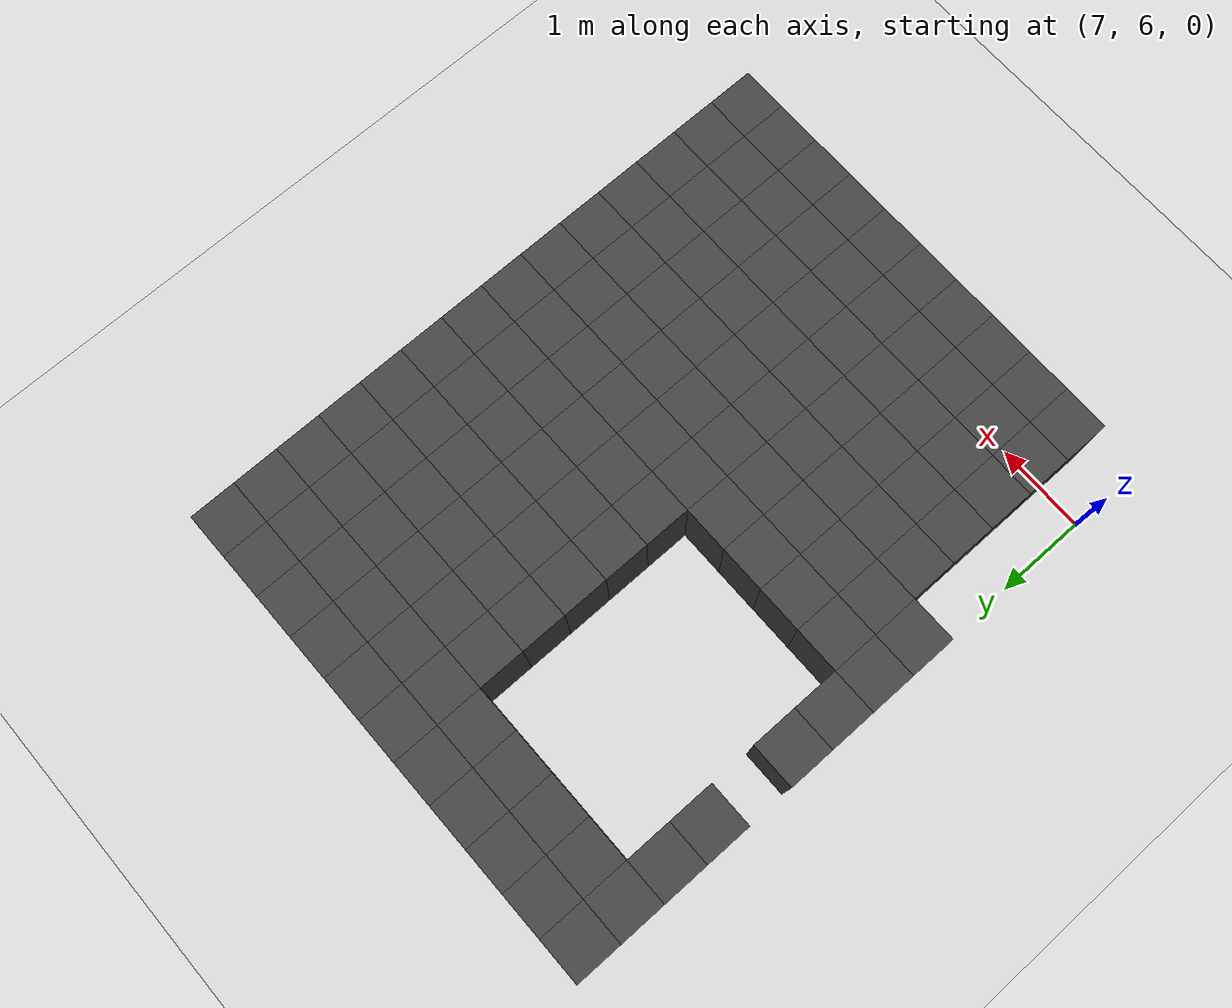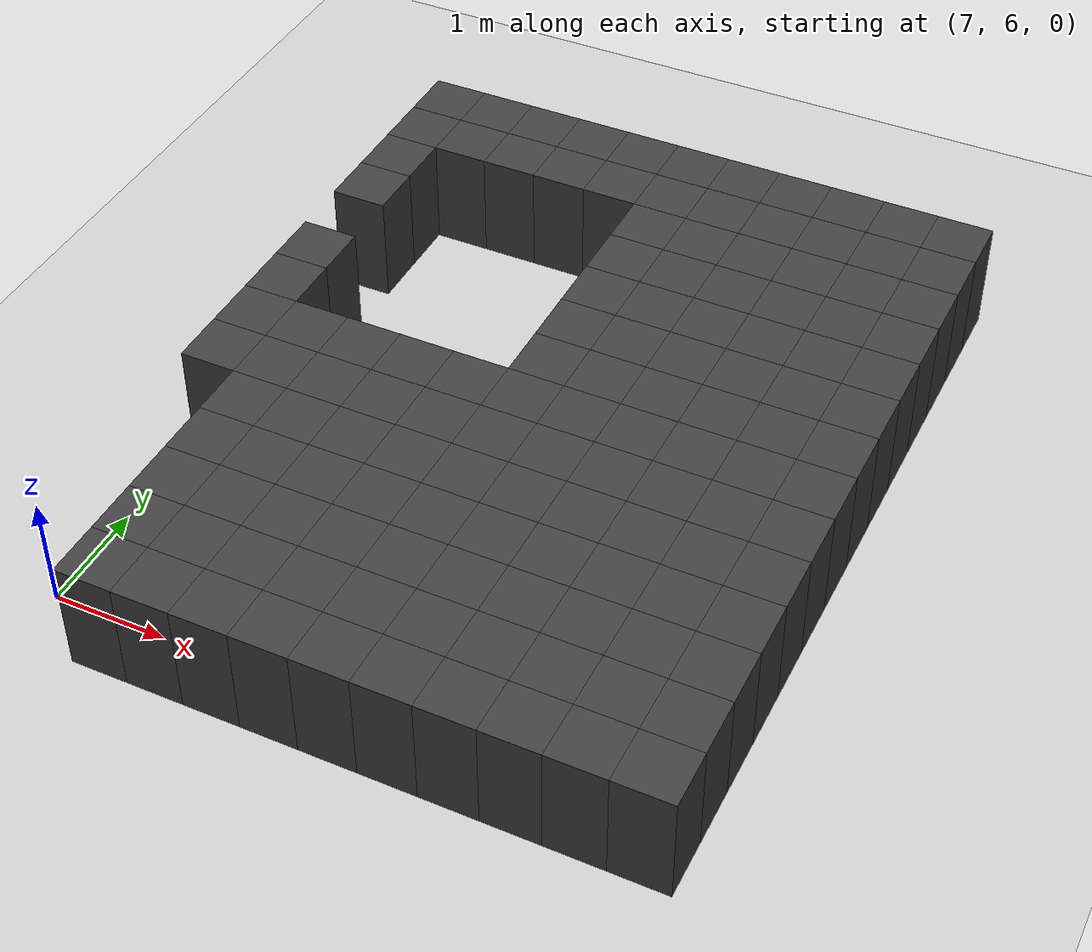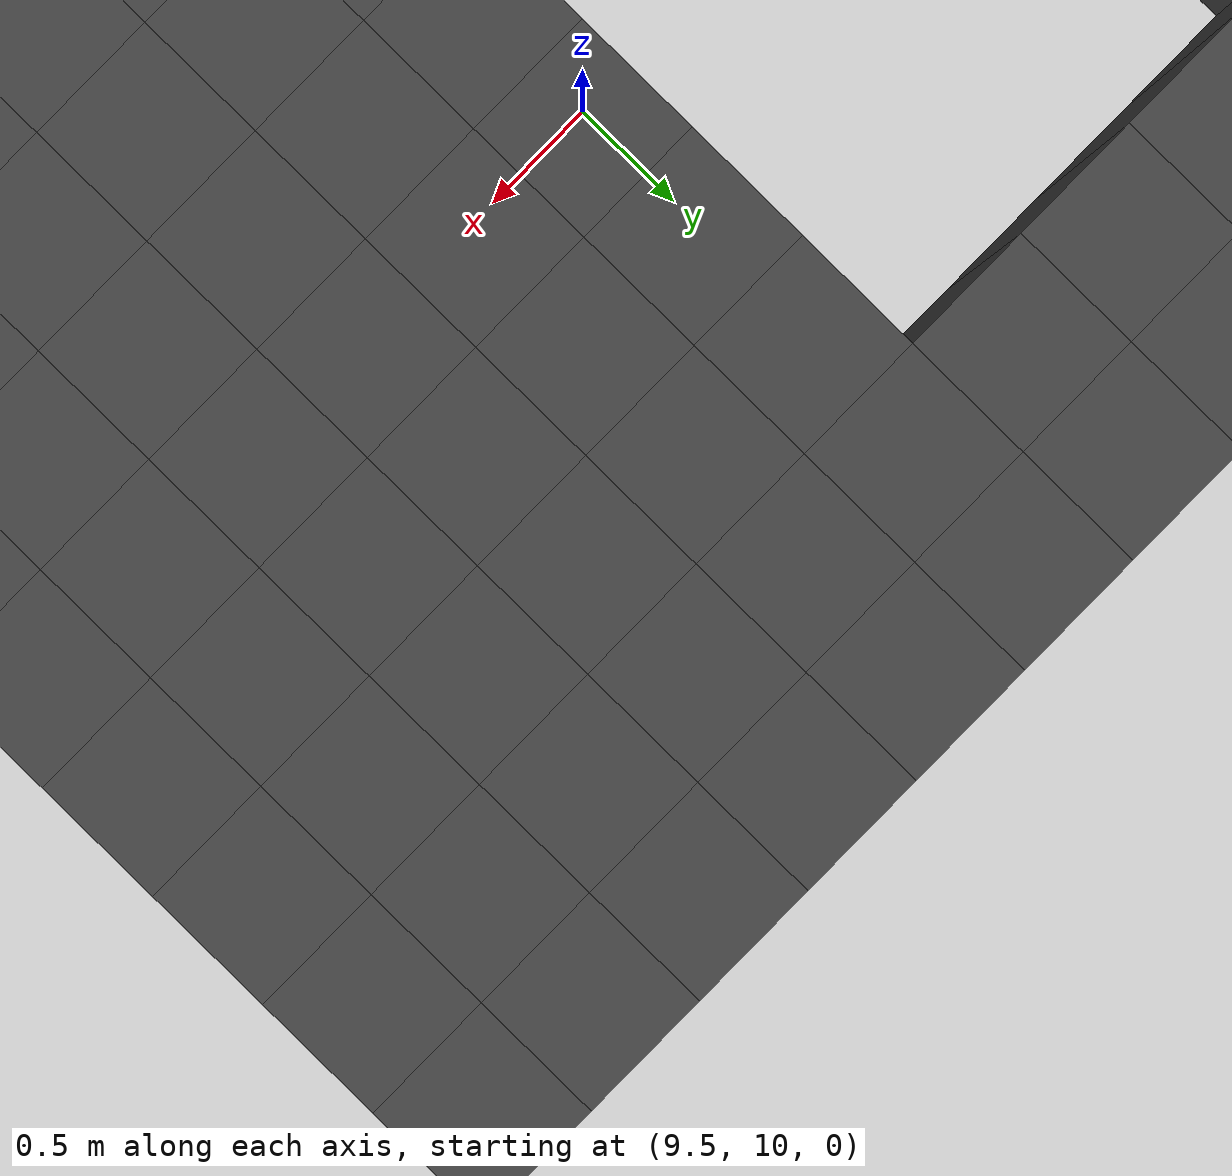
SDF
<sdf version="1.7">
 <world name="map_14494">
  <model name="ground_plane">
   <static>true</static>
   <link name="link">
    <collision name="collision">
     <geometry><plane><normal>0 0 1</normal><size>200 200</size></plane></geometry>
    </collision>
    <visual name="visual">
     <geometry><plane><normal>0 0 1</normal><size>200 200</size></plane></geometry>
     <material><ambient>0.8 0.8 0.8 1</ambient><diffuse>0.8 0.8 0.8 1</diffuse></material>
    </visual>
   </link>
  </model>
  <model name="maze_environment">
   <static>true</static>
   <link name="wall_39">
    <pose>7.250 12.250 0.500 0 0 0</pose>
    <collision name="col"><geometry><box><size>0.5 0.5 1.0</size></box></geometry></collision>
    <visual name="vis">
     <geometry><box><size>0.5 0.5 1.0</size></box></geometry>
     <material><ambient>0.15 0.15 0.15 1</ambient><diffuse>0.25 0.25 0.25 1</diffuse></material>
    </visual>
   </link>
   <link name="wall_40">
    <pose>7.750 12.250 0.500 0 0 0</pose>
    <collision name="col"><geometry><box><size>0.5 0.5 1.0</size></box></geometry></collision>
    <visual name="vis">
     <geometry><box><size>0.5 0.5 1.0</size></box></geometry>
     <material><ambient>0.15 0.15 0.15 1</ambient><diffuse>0.25 0.25 0.25 1</diffuse></material>
    </visual>
   </link>
   <link name="wall_41">
    <pose>8.250 12.250 0.500 0 0 0</pose>
    <collision name="col"><geometry><box><size>0.5 0.5 1.0</size></box></geometry></collision>
    <visual name="vis">
     <geometry><box><size>0.5 0.5 1.0</size></box></geometry>
     <material><ambient>0.15 0.15 0.15 1</ambient><diffuse>0.25 0.25 0.25 1</diffuse></material>
    </visual>
   </link>
   <link name="wall_42">
    <pose>8.750 12.250 0.500 0 0 0</pose>
    <collision name="col"><geometry><box><size>0.5 0.5 1.0</size></box></geometry></collision>
    <visual name="vis">
     <geometry><box><size>0.5 0.5 1.0</size></box></geometry>
     <material><ambient>0.15 0.15 0.15 1</ambient><diffuse>0.25 0.25 0.25 1</diffuse></material>
    </visual>
   </link>
   <link name="wall_43">
    <pose>9.250 12.250 0.500 0 0 0</pose>
    <collision name="col"><geometry><box><size>0.5 0.5 1.0</size></box></geometry></collision>
    <visual name="vis">
     <geometry><box><size>0.5 0.5 1.0</size></box></geometry>
     <material><ambient>0.15 0.15 0.15 1</ambient><diffuse>0.25 0.25 0.25 1</diffuse></material>
    </visual>
   </link>
   <link name="wall_44">
    <pose>9.750 12.250 0.500 0 0 0</pose>
    <collision name="col"><geometry><box><size>0.5 0.5 1.0</size></box></geometry></collision>
    <visual name="vis">
     <geometry><box><size>0.5 0.5 1.0</size></box></geometry>
     <material><ambient>0.15 0.15 0.15 1</ambient><diffuse>0.25 0.25 0.25 1</diffuse></material>
    </visual>
   </link>
   <link name="wall_45">
    <pose>10.250 12.250 0.500 0 0 0</pose>
    <collision name="col"><geometry><box><size>0.5 0.5 1.0</size></box></geometry></collision>
    <visual name="vis">
     <geometry><box><size>0.5 0.5 1.0</size></box></geometry>
     <material><ambient>0.15 0.15 0.15 1</ambient><diffuse>0.25 0.25 0.25 1</diffuse></material>
    </visual>
   </link>
   <link name="wall_46">
    <pose>10.750 12.250 0.500 0 0 0</pose>
    <collision name="col"><geometry><box><size>0.5 0.5 1.0</size></box></geometry></collision>
    <visual name="vis">
     <geometry><box><size>0.5 0.5 1.0</size></box></geometry>
     <material><ambient>0.15 0.15 0.15 1</ambient><diffuse>0.25 0.25 0.25 1</diffuse></material>
    </visual>
   </link>
   <link name="wall_47">
    <pose>11.250 12.250 0.500 0 0 0</pose>
    <collision name="col"><geometry><box><size>0.5 0.5 1.0</size></box></geometry></collision>
    <visual name="vis">
     <geometry><box><size>0.5 0.5 1.0</size></box></geometry>
     <material><ambient>0.15 0.15 0.15 1</ambient><diffuse>0.25 0.25 0.25 1</diffuse></material>
    </visual>
   </link>
   <link name="wall_48">
    <pose>11.750 12.250 0.500 0 0 0</pose>
    <collision name="col"><geometry><box><size>0.5 0.5 1.0</size></box></geometry></collision>
    <visual name="vis">
     <geometry><box><size>0.5 0.5 1.0</size></box></geometry>
     <material><ambient>0.15 0.15 0.15 1</ambient><diffuse>0.25 0.25 0.25 1</diffuse></material>
    </visual>
   </link>
   <link name="wall_49">
    <pose>12.250 12.250 0.500 0 0 0</pose>
    <collision name="col"><geometry><box><size>0.5 0.5 1.0</size></box></geometry></collision>
    <visual name="vis">
     <geometry><box><size>0.5 0.5 1.0</size></box></geometry>
     <material><ambient>0.15 0.15 0.15 1</ambient><diffuse>0.25 0.25 0.25 1</diffuse></material>
    </visual>
   </link>
   <link name="wall_86">
    <pose>7.250 11.750 0.500 0 0 0</pose>
    <collision name="col"><geometry><box><size>0.5 0.5 1.0</size></box></geometry></collision>
    <visual name="vis">
     <geometry><box><size>0.5 0.5 1.0</size></box></geometry>
     <material><ambient>0.15 0.15 0.15 1</ambient><diffuse>0.25 0.25 0.25 1</diffuse></material>
    </visual>
   </link>
   <link name="wall_87">
    <pose>7.750 11.750 0.500 0 0 0</pose>
    <collision name="col"><geometry><box><size>0.5 0.5 1.0</size></box></geometry></collision>
    <visual name="vis">
     <geometry><box><size>0.5 0.5 1.0</size></box></geometry>
     <material><ambient>0.15 0.15 0.15 1</ambient><diffuse>0.25 0.25 0.25 1</diffuse></material>
    </visual>
   </link>
   <link name="wall_88">
    <pose>8.250 11.750 0.500 0 0 0</pose>
    <collision name="col"><geometry><box><size>0.5 0.5 1.0</size></box></geometry></collision>
    <visual name="vis">
     <geometry><box><size>0.5 0.5 1.0</size></box></geometry>
     <material><ambient>0.15 0.15 0.15 1</ambient><diffuse>0.25 0.25 0.25 1</diffuse></material>
    </visual>
   </link>
   <link name="wall_89">
    <pose>8.750 11.750 0.500 0 0 0</pose>
    <collision name="col"><geometry><box><size>0.5 0.5 1.0</size></box></geometry></collision>
    <visual name="vis">
     <geometry><box><size>0.5 0.5 1.0</size></box></geometry>
     <material><ambient>0.15 0.15 0.15 1</ambient><diffuse>0.25 0.25 0.25 1</diffuse></material>
    </visual>
   </link>
   <link name="wall_90">
    <pose>9.250 11.750 0.500 0 0 0</pose>
    <collision name="col"><geometry><box><size>0.5 0.5 1.0</size></box></geometry></collision>
    <visual name="vis">
     <geometry><box><size>0.5 0.5 1.0</size></box></geometry>
     <material><ambient>0.15 0.15 0.15 1</ambient><diffuse>0.25 0.25 0.25 1</diffuse></material>
    </visual>
   </link>
   <link name="wall_91">
    <pose>9.750 11.750 0.500 0 0 0</pose>
    <collision name="col"><geometry><box><size>0.5 0.5 1.0</size></box></geometry></collision>
    <visual name="vis">
     <geometry><box><size>0.5 0.5 1.0</size></box></geometry>
     <material><ambient>0.15 0.15 0.15 1</ambient><diffuse>0.25 0.25 0.25 1</diffuse></material>
    </visual>
   </link>
   <link name="wall_92">
    <pose>10.250 11.750 0.500 0 0 0</pose>
    <collision name="col"><geometry><box><size>0.5 0.5 1.0</size></box></geometry></collision>
    <visual name="vis">
     <geometry><box><size>0.5 0.5 1.0</size></box></geometry>
     <material><ambient>0.15 0.15 0.15 1</ambient><diffuse>0.25 0.25 0.25 1</diffuse></material>
    </visual>
   </link>
   <link name="wall_93">
    <pose>10.750 11.750 0.500 0 0 0</pose>
    <collision name="col"><geometry><box><size>0.5 0.5 1.0</size></box></geometry></collision>
    <visual name="vis">
     <geometry><box><size>0.5 0.5 1.0</size></box></geometry>
     <material><ambient>0.15 0.15 0.15 1</ambient><diffuse>0.25 0.25 0.25 1</diffuse></material>
    </visual>
   </link>
   <link name="wall_94">
    <pose>11.250 11.750 0.500 0 0 0</pose>
    <collision name="col"><geometry><box><size>0.5 0.5 1.0</size></box></geometry></collision>
    <visual name="vis">
     <geometry><box><size>0.5 0.5 1.0</size></box></geometry>
     <material><ambient>0.15 0.15 0.15 1</ambient><diffuse>0.25 0.25 0.25 1</diffuse></material>
    </visual>
   </link>
   <link name="wall_95">
    <pose>11.750 11.750 0.500 0 0 0</pose>
    <collision name="col"><geometry><box><size>0.5 0.5 1.0</size></box></geometry></collision>
    <visual name="vis">
     <geometry><box><size>0.5 0.5 1.0</size></box></geometry>
     <material><ambient>0.15 0.15 0.15 1</ambient><diffuse>0.25 0.25 0.25 1</diffuse></material>
    </visual>
   </link>
   <link name="wall_96">
    <pose>12.250 11.750 0.500 0 0 0</pose>
    <collision name="col"><geometry><box><size>0.5 0.5 1.0</size></box></geometry></collision>
    <visual name="vis">
     <geometry><box><size>0.5 0.5 1.0</size></box></geometry>
     <material><ambient>0.15 0.15 0.15 1</ambient><diffuse>0.25 0.25 0.25 1</diffuse></material>
    </visual>
   </link>
   <link name="wall_125">
    <pose>7.250 11.250 0.500 0 0 0</pose>
    <collision name="col"><geometry><box><size>0.5 0.5 1.0</size></box></geometry></collision>
    <visual name="vis">
     <geometry><box><size>0.5 0.5 1.0</size></box></geometry>
     <material><ambient>0.15 0.15 0.15 1</ambient><diffuse>0.25 0.25 0.25 1</diffuse></material>
    </visual>
   </link>
   <link name="wall_126">
    <pose>9.750 11.250 0.500 0 0 0</pose>
    <collision name="col"><geometry><box><size>0.5 0.5 1.0</size></box></geometry></collision>
    <visual name="vis">
     <geometry><box><size>0.5 0.5 1.0</size></box></geometry>
     <material><ambient>0.15 0.15 0.15 1</ambient><diffuse>0.25 0.25 0.25 1</diffuse></material>
    </visual>
   </link>
   <link name="wall_127">
    <pose>10.250 11.250 0.500 0 0 0</pose>
    <collision name="col"><geometry><box><size>0.5 0.5 1.0</size></box></geometry></collision>
    <visual name="vis">
     <geometry><box><size>0.5 0.5 1.0</size></box></geometry>
     <material><ambient>0.15 0.15 0.15 1</ambient><diffuse>0.25 0.25 0.25 1</diffuse></material>
    </visual>
   </link>
   <link name="wall_128">
    <pose>10.750 11.250 0.500 0 0 0</pose>
    <collision name="col"><geometry><box><size>0.5 0.5 1.0</size></box></geometry></collision>
    <visual name="vis">
     <geometry><box><size>0.5 0.5 1.0</size></box></geometry>
     <material><ambient>0.15 0.15 0.15 1</ambient><diffuse>0.25 0.25 0.25 1</diffuse></material>
    </visual>
   </link>
   <link name="wall_129">
    <pose>11.250 11.250 0.500 0 0 0</pose>
    <collision name="col"><geometry><box><size>0.5 0.5 1.0</size></box></geometry></collision>
    <visual name="vis">
     <geometry><box><size>0.5 0.5 1.0</size></box></geometry>
     <material><ambient>0.15 0.15 0.15 1</ambient><diffuse>0.25 0.25 0.25 1</diffuse></material>
    </visual>
   </link>
   <link name="wall_130">
    <pose>11.750 11.250 0.500 0 0 0</pose>
    <collision name="col"><geometry><box><size>0.5 0.5 1.0</size></box></geometry></collision>
    <visual name="vis">
     <geometry><box><size>0.5 0.5 1.0</size></box></geometry>
     <material><ambient>0.15 0.15 0.15 1</ambient><diffuse>0.25 0.25 0.25 1</diffuse></material>
    </visual>
   </link>
   <link name="wall_131">
    <pose>12.250 11.250 0.500 0 0 0</pose>
    <collision name="col"><geometry><box><size>0.5 0.5 1.0</size></box></geometry></collision>
    <visual name="vis">
     <geometry><box><size>0.5 0.5 1.0</size></box></geometry>
     <material><ambient>0.15 0.15 0.15 1</ambient><diffuse>0.25 0.25 0.25 1</diffuse></material>
    </visual>
   </link>
   <link name="wall_153">
    <pose>7.250 10.750 0.500 0 0 0</pose>
    <collision name="col"><geometry><box><size>0.5 0.5 1.0</size></box></geometry></collision>
    <visual name="vis">
     <geometry><box><size>0.5 0.5 1.0</size></box></geometry>
     <material><ambient>0.15 0.15 0.15 1</ambient><diffuse>0.25 0.25 0.25 1</diffuse></material>
    </visual>
   </link>
   <link name="wall_154">
    <pose>9.750 10.750 0.500 0 0 0</pose>
    <collision name="col"><geometry><box><size>0.5 0.5 1.0</size></box></geometry></collision>
    <visual name="vis">
     <geometry><box><size>0.5 0.5 1.0</size></box></geometry>
     <material><ambient>0.15 0.15 0.15 1</ambient><diffuse>0.25 0.25 0.25 1</diffuse></material>
    </visual>
   </link>
   <link name="wall_155">
    <pose>10.250 10.750 0.500 0 0 0</pose>
    <collision name="col"><geometry><box><size>0.5 0.5 1.0</size></box></geometry></collision>
    <visual name="vis">
     <geometry><box><size>0.5 0.5 1.0</size></box></geometry>
     <material><ambient>0.15 0.15 0.15 1</ambient><diffuse>0.25 0.25 0.25 1</diffuse></material>
    </visual>
   </link>
   <link name="wall_156">
    <pose>10.750 10.750 0.500 0 0 0</pose>
    <collision name="col"><geometry><box><size>0.5 0.5 1.0</size></box></geometry></collision>
    <visual name="vis">
     <geometry><box><size>0.5 0.5 1.0</size></box></geometry>
     <material><ambient>0.15 0.15 0.15 1</ambient><diffuse>0.25 0.25 0.25 1</diffuse></material>
    </visual>
   </link>
   <link name="wall_157">
    <pose>11.250 10.750 0.500 0 0 0</pose>
    <collision name="col"><geometry><box><size>0.5 0.5 1.0</size></box></geometry></collision>
    <visual name="vis">
     <geometry><box><size>0.5 0.5 1.0</size></box></geometry>
     <material><ambient>0.15 0.15 0.15 1</ambient><diffuse>0.25 0.25 0.25 1</diffuse></material>
    </visual>
   </link>
   <link name="wall_158">
    <pose>11.750 10.750 0.500 0 0 0</pose>
    <collision name="col"><geometry><box><size>0.5 0.5 1.0</size></box></geometry></collision>
    <visual name="vis">
     <geometry><box><size>0.5 0.5 1.0</size></box></geometry>
     <material><ambient>0.15 0.15 0.15 1</ambient><diffuse>0.25 0.25 0.25 1</diffuse></material>
    </visual>
   </link>
   <link name="wall_159">
    <pose>12.250 10.750 0.500 0 0 0</pose>
    <collision name="col"><geometry><box><size>0.5 0.5 1.0</size></box></geometry></collision>
    <visual name="vis">
     <geometry><box><size>0.5 0.5 1.0</size></box></geometry>
     <material><ambient>0.15 0.15 0.15 1</ambient><diffuse>0.25 0.25 0.25 1</diffuse></material>
    </visual>
   </link>
   <link name="wall_172">
    <pose>9.750 10.250 0.500 0 0 0</pose>
    <collision name="col"><geometry><box><size>0.5 0.5 1.0</size></box></geometry></collision>
    <visual name="vis">
     <geometry><box><size>0.5 0.5 1.0</size></box></geometry>
     <material><ambient>0.15 0.15 0.15 1</ambient><diffuse>0.25 0.25 0.25 1</diffuse></material>
    </visual>
   </link>
   <link name="wall_173">
    <pose>10.250 10.250 0.500 0 0 0</pose>
    <collision name="col"><geometry><box><size>0.5 0.5 1.0</size></box></geometry></collision>
    <visual name="vis">
     <geometry><box><size>0.5 0.5 1.0</size></box></geometry>
     <material><ambient>0.15 0.15 0.15 1</ambient><diffuse>0.25 0.25 0.25 1</diffuse></material>
    </visual>
   </link>
   <link name="wall_174">
    <pose>10.750 10.250 0.500 0 0 0</pose>
    <collision name="col"><geometry><box><size>0.5 0.5 1.0</size></box></geometry></collision>
    <visual name="vis">
     <geometry><box><size>0.5 0.5 1.0</size></box></geometry>
     <material><ambient>0.15 0.15 0.15 1</ambient><diffuse>0.25 0.25 0.25 1</diffuse></material>
    </visual>
   </link>
   <link name="wall_175">
    <pose>11.250 10.250 0.500 0 0 0</pose>
    <collision name="col"><geometry><box><size>0.5 0.5 1.0</size></box></geometry></collision>
    <visual name="vis">
     <geometry><box><size>0.5 0.5 1.0</size></box></geometry>
     <material><ambient>0.15 0.15 0.15 1</ambient><diffuse>0.25 0.25 0.25 1</diffuse></material>
    </visual>
   </link>
   <link name="wall_176">
    <pose>11.750 10.250 0.500 0 0 0</pose>
    <collision name="col"><geometry><box><size>0.5 0.5 1.0</size></box></geometry></collision>
    <visual name="vis">
     <geometry><box><size>0.5 0.5 1.0</size></box></geometry>
     <material><ambient>0.15 0.15 0.15 1</ambient><diffuse>0.25 0.25 0.25 1</diffuse></material>
    </visual>
   </link>
   <link name="wall_177">
    <pose>12.250 10.250 0.500 0 0 0</pose>
    <collision name="col"><geometry><box><size>0.5 0.5 1.0</size></box></geometry></collision>
    <visual name="vis">
     <geometry><box><size>0.5 0.5 1.0</size></box></geometry>
     <material><ambient>0.15 0.15 0.15 1</ambient><diffuse>0.25 0.25 0.25 1</diffuse></material>
    </visual>
   </link>
   <link name="wall_201">
    <pose>7.250 9.750 0.500 0 0 0</pose>
    <collision name="col"><geometry><box><size>0.5 0.5 1.0</size></box></geometry></collision>
    <visual name="vis">
     <geometry><box><size>0.5 0.5 1.0</size></box></geometry>
     <material><ambient>0.15 0.15 0.15 1</ambient><diffuse>0.25 0.25 0.25 1</diffuse></material>
    </visual>
   </link>
   <link name="wall_202">
    <pose>9.750 9.750 0.500 0 0 0</pose>
    <collision name="col"><geometry><box><size>0.5 0.5 1.0</size></box></geometry></collision>
    <visual name="vis">
     <geometry><box><size>0.5 0.5 1.0</size></box></geometry>
     <material><ambient>0.15 0.15 0.15 1</ambient><diffuse>0.25 0.25 0.25 1</diffuse></material>
    </visual>
   </link>
   <link name="wall_203">
    <pose>10.250 9.750 0.500 0 0 0</pose>
    <collision name="col"><geometry><box><size>0.5 0.5 1.0</size></box></geometry></collision>
    <visual name="vis">
     <geometry><box><size>0.5 0.5 1.0</size></box></geometry>
     <material><ambient>0.15 0.15 0.15 1</ambient><diffuse>0.25 0.25 0.25 1</diffuse></material>
    </visual>
   </link>
   <link name="wall_204">
    <pose>10.750 9.750 0.500 0 0 0</pose>
    <collision name="col"><geometry><box><size>0.5 0.5 1.0</size></box></geometry></collision>
    <visual name="vis">
     <geometry><box><size>0.5 0.5 1.0</size></box></geometry>
     <material><ambient>0.15 0.15 0.15 1</ambient><diffuse>0.25 0.25 0.25 1</diffuse></material>
    </visual>
   </link>
   <link name="wall_205">
    <pose>11.250 9.750 0.500 0 0 0</pose>
    <collision name="col"><geometry><box><size>0.5 0.5 1.0</size></box></geometry></collision>
    <visual name="vis">
     <geometry><box><size>0.5 0.5 1.0</size></box></geometry>
     <material><ambient>0.15 0.15 0.15 1</ambient><diffuse>0.25 0.25 0.25 1</diffuse></material>
    </visual>
   </link>
   <link name="wall_206">
    <pose>11.750 9.750 0.500 0 0 0</pose>
    <collision name="col"><geometry><box><size>0.5 0.5 1.0</size></box></geometry></collision>
    <visual name="vis">
     <geometry><box><size>0.5 0.5 1.0</size></box></geometry>
     <material><ambient>0.15 0.15 0.15 1</ambient><diffuse>0.25 0.25 0.25 1</diffuse></material>
    </visual>
   </link>
   <link name="wall_207">
    <pose>12.250 9.750 0.500 0 0 0</pose>
    <collision name="col"><geometry><box><size>0.5 0.5 1.0</size></box></geometry></collision>
    <visual name="vis">
     <geometry><box><size>0.5 0.5 1.0</size></box></geometry>
     <material><ambient>0.15 0.15 0.15 1</ambient><diffuse>0.25 0.25 0.25 1</diffuse></material>
    </visual>
   </link>
   <link name="wall_226">
    <pose>7.250 9.250 0.500 0 0 0</pose>
    <collision name="col"><geometry><box><size>0.5 0.5 1.0</size></box></geometry></collision>
    <visual name="vis">
     <geometry><box><size>0.5 0.5 1.0</size></box></geometry>
     <material><ambient>0.15 0.15 0.15 1</ambient><diffuse>0.25 0.25 0.25 1</diffuse></material>
    </visual>
   </link>
   <link name="wall_227">
    <pose>9.750 9.250 0.500 0 0 0</pose>
    <collision name="col"><geometry><box><size>0.5 0.5 1.0</size></box></geometry></collision>
    <visual name="vis">
     <geometry><box><size>0.5 0.5 1.0</size></box></geometry>
     <material><ambient>0.15 0.15 0.15 1</ambient><diffuse>0.25 0.25 0.25 1</diffuse></material>
    </visual>
   </link>
   <link name="wall_228">
    <pose>10.250 9.250 0.500 0 0 0</pose>
    <collision name="col"><geometry><box><size>0.5 0.5 1.0</size></box></geometry></collision>
    <visual name="vis">
     <geometry><box><size>0.5 0.5 1.0</size></box></geometry>
     <material><ambient>0.15 0.15 0.15 1</ambient><diffuse>0.25 0.25 0.25 1</diffuse></material>
    </visual>
   </link>
   <link name="wall_229">
    <pose>10.750 9.250 0.500 0 0 0</pose>
    <collision name="col"><geometry><box><size>0.5 0.5 1.0</size></box></geometry></collision>
    <visual name="vis">
     <geometry><box><size>0.5 0.5 1.0</size></box></geometry>
     <material><ambient>0.15 0.15 0.15 1</ambient><diffuse>0.25 0.25 0.25 1</diffuse></material>
    </visual>
   </link>
   <link name="wall_230">
    <pose>11.250 9.250 0.500 0 0 0</pose>
    <collision name="col"><geometry><box><size>0.5 0.5 1.0</size></box></geometry></collision>
    <visual name="vis">
     <geometry><box><size>0.5 0.5 1.0</size></box></geometry>
     <material><ambient>0.15 0.15 0.15 1</ambient><diffuse>0.25 0.25 0.25 1</diffuse></material>
    </visual>
   </link>
   <link name="wall_231">
    <pose>11.750 9.250 0.500 0 0 0</pose>
    <collision name="col"><geometry><box><size>0.5 0.5 1.0</size></box></geometry></collision>
    <visual name="vis">
     <geometry><box><size>0.5 0.5 1.0</size></box></geometry>
     <material><ambient>0.15 0.15 0.15 1</ambient><diffuse>0.25 0.25 0.25 1</diffuse></material>
    </visual>
   </link>
   <link name="wall_232">
    <pose>12.250 9.250 0.500 0 0 0</pose>
    <collision name="col"><geometry><box><size>0.5 0.5 1.0</size></box></geometry></collision>
    <visual name="vis">
     <geometry><box><size>0.5 0.5 1.0</size></box></geometry>
     <material><ambient>0.15 0.15 0.15 1</ambient><diffuse>0.25 0.25 0.25 1</diffuse></material>
    </visual>
   </link>
   <link name="wall_264">
    <pose>7.250 8.750 0.500 0 0 0</pose>
    <collision name="col"><geometry><box><size>0.5 0.5 1.0</size></box></geometry></collision>
    <visual name="vis">
     <geometry><box><size>0.5 0.5 1.0</size></box></geometry>
     <material><ambient>0.15 0.15 0.15 1</ambient><diffuse>0.25 0.25 0.25 1</diffuse></material>
    </visual>
   </link>
   <link name="wall_265">
    <pose>7.750 8.750 0.500 0 0 0</pose>
    <collision name="col"><geometry><box><size>0.5 0.5 1.0</size></box></geometry></collision>
    <visual name="vis">
     <geometry><box><size>0.5 0.5 1.0</size></box></geometry>
     <material><ambient>0.15 0.15 0.15 1</ambient><diffuse>0.25 0.25 0.25 1</diffuse></material>
    </visual>
   </link>
   <link name="wall_266">
    <pose>8.250 8.750 0.500 0 0 0</pose>
    <collision name="col"><geometry><box><size>0.5 0.5 1.0</size></box></geometry></collision>
    <visual name="vis">
     <geometry><box><size>0.5 0.5 1.0</size></box></geometry>
     <material><ambient>0.15 0.15 0.15 1</ambient><diffuse>0.25 0.25 0.25 1</diffuse></material>
    </visual>
   </link>
   <link name="wall_267">
    <pose>8.750 8.750 0.500 0 0 0</pose>
    <collision name="col"><geometry><box><size>0.5 0.5 1.0</size></box></geometry></collision>
    <visual name="vis">
     <geometry><box><size>0.5 0.5 1.0</size></box></geometry>
     <material><ambient>0.15 0.15 0.15 1</ambient><diffuse>0.25 0.25 0.25 1</diffuse></material>
    </visual>
   </link>
   <link name="wall_268">
    <pose>9.250 8.750 0.500 0 0 0</pose>
    <collision name="col"><geometry><box><size>0.5 0.5 1.0</size></box></geometry></collision>
    <visual name="vis">
     <geometry><box><size>0.5 0.5 1.0</size></box></geometry>
     <material><ambient>0.15 0.15 0.15 1</ambient><diffuse>0.25 0.25 0.25 1</diffuse></material>
    </visual>
   </link>
   <link name="wall_269">
    <pose>9.750 8.750 0.500 0 0 0</pose>
    <collision name="col"><geometry><box><size>0.5 0.5 1.0</size></box></geometry></collision>
    <visual name="vis">
     <geometry><box><size>0.5 0.5 1.0</size></box></geometry>
     <material><ambient>0.15 0.15 0.15 1</ambient><diffuse>0.25 0.25 0.25 1</diffuse></material>
    </visual>
   </link>
   <link name="wall_270">
    <pose>10.250 8.750 0.500 0 0 0</pose>
    <collision name="col"><geometry><box><size>0.5 0.5 1.0</size></box></geometry></collision>
    <visual name="vis">
     <geometry><box><size>0.5 0.5 1.0</size></box></geometry>
     <material><ambient>0.15 0.15 0.15 1</ambient><diffuse>0.25 0.25 0.25 1</diffuse></material>
    </visual>
   </link>
   <link name="wall_271">
    <pose>10.750 8.750 0.500 0 0 0</pose>
    <collision name="col"><geometry><box><size>0.5 0.5 1.0</size></box></geometry></collision>
    <visual name="vis">
     <geometry><box><size>0.5 0.5 1.0</size></box></geometry>
     <material><ambient>0.15 0.15 0.15 1</ambient><diffuse>0.25 0.25 0.25 1</diffuse></material>
    </visual>
   </link>
   <link name="wall_272">
    <pose>11.250 8.750 0.500 0 0 0</pose>
    <collision name="col"><geometry><box><size>0.5 0.5 1.0</size></box></geometry></collision>
    <visual name="vis">
     <geometry><box><size>0.5 0.5 1.0</size></box></geometry>
     <material><ambient>0.15 0.15 0.15 1</ambient><diffuse>0.25 0.25 0.25 1</diffuse></material>
    </visual>
   </link>
   <link name="wall_273">
    <pose>11.750 8.750 0.500 0 0 0</pose>
    <collision name="col"><geometry><box><size>0.5 0.5 1.0</size></box></geometry></collision>
    <visual name="vis">
     <geometry><box><size>0.5 0.5 1.0</size></box></geometry>
     <material><ambient>0.15 0.15 0.15 1</ambient><diffuse>0.25 0.25 0.25 1</diffuse></material>
    </visual>
   </link>
   <link name="wall_274">
    <pose>12.250 8.750 0.500 0 0 0</pose>
    <collision name="col"><geometry><box><size>0.5 0.5 1.0</size></box></geometry></collision>
    <visual name="vis">
     <geometry><box><size>0.5 0.5 1.0</size></box></geometry>
     <material><ambient>0.15 0.15 0.15 1</ambient><diffuse>0.25 0.25 0.25 1</diffuse></material>
    </visual>
   </link>
   <link name="wall_306">
    <pose>7.250 8.250 0.500 0 0 0</pose>
    <collision name="col"><geometry><box><size>0.5 0.5 1.0</size></box></geometry></collision>
    <visual name="vis">
     <geometry><box><size>0.5 0.5 1.0</size></box></geometry>
     <material><ambient>0.15 0.15 0.15 1</ambient><diffuse>0.25 0.25 0.25 1</diffuse></material>
    </visual>
   </link>
   <link name="wall_307">
    <pose>7.750 8.250 0.500 0 0 0</pose>
    <collision name="col"><geometry><box><size>0.5 0.5 1.0</size></box></geometry></collision>
    <visual name="vis">
     <geometry><box><size>0.5 0.5 1.0</size></box></geometry>
     <material><ambient>0.15 0.15 0.15 1</ambient><diffuse>0.25 0.25 0.25 1</diffuse></material>
    </visual>
   </link>
   <link name="wall_308">
    <pose>8.250 8.250 0.500 0 0 0</pose>
    <collision name="col"><geometry><box><size>0.5 0.5 1.0</size></box></geometry></collision>
    <visual name="vis">
     <geometry><box><size>0.5 0.5 1.0</size></box></geometry>
     <material><ambient>0.15 0.15 0.15 1</ambient><diffuse>0.25 0.25 0.25 1</diffuse></material>
    </visual>
   </link>
   <link name="wall_309">
    <pose>8.750 8.250 0.500 0 0 0</pose>
    <collision name="col"><geometry><box><size>0.5 0.5 1.0</size></box></geometry></collision>
    <visual name="vis">
     <geometry><box><size>0.5 0.5 1.0</size></box></geometry>
     <material><ambient>0.15 0.15 0.15 1</ambient><diffuse>0.25 0.25 0.25 1</diffuse></material>
    </visual>
   </link>
   <link name="wall_310">
    <pose>9.250 8.250 0.500 0 0 0</pose>
    <collision name="col"><geometry><box><size>0.5 0.5 1.0</size></box></geometry></collision>
    <visual name="vis">
     <geometry><box><size>0.5 0.5 1.0</size></box></geometry>
     <material><ambient>0.15 0.15 0.15 1</ambient><diffuse>0.25 0.25 0.25 1</diffuse></material>
    </visual>
   </link>
   <link name="wall_311">
    <pose>9.750 8.250 0.500 0 0 0</pose>
    <collision name="col"><geometry><box><size>0.5 0.5 1.0</size></box></geometry></collision>
    <visual name="vis">
     <geometry><box><size>0.5 0.5 1.0</size></box></geometry>
     <material><ambient>0.15 0.15 0.15 1</ambient><diffuse>0.25 0.25 0.25 1</diffuse></material>
    </visual>
   </link>
   <link name="wall_312">
    <pose>10.250 8.250 0.500 0 0 0</pose>
    <collision name="col"><geometry><box><size>0.5 0.5 1.0</size></box></geometry></collision>
    <visual name="vis">
     <geometry><box><size>0.5 0.5 1.0</size></box></geometry>
     <material><ambient>0.15 0.15 0.15 1</ambient><diffuse>0.25 0.25 0.25 1</diffuse></material>
    </visual>
   </link>
   <link name="wall_313">
    <pose>10.750 8.250 0.500 0 0 0</pose>
    <collision name="col"><geometry><box><size>0.5 0.5 1.0</size></box></geometry></collision>
    <visual name="vis">
     <geometry><box><size>0.5 0.5 1.0</size></box></geometry>
     <material><ambient>0.15 0.15 0.15 1</ambient><diffuse>0.25 0.25 0.25 1</diffuse></material>
    </visual>
   </link>
   <link name="wall_314">
    <pose>11.250 8.250 0.500 0 0 0</pose>
    <collision name="col"><geometry><box><size>0.5 0.5 1.0</size></box></geometry></collision>
    <visual name="vis">
     <geometry><box><size>0.5 0.5 1.0</size></box></geometry>
     <material><ambient>0.15 0.15 0.15 1</ambient><diffuse>0.25 0.25 0.25 1</diffuse></material>
    </visual>
   </link>
   <link name="wall_315">
    <pose>11.750 8.250 0.500 0 0 0</pose>
    <collision name="col"><geometry><box><size>0.5 0.5 1.0</size></box></geometry></collision>
    <visual name="vis">
     <geometry><box><size>0.5 0.5 1.0</size></box></geometry>
     <material><ambient>0.15 0.15 0.15 1</ambient><diffuse>0.25 0.25 0.25 1</diffuse></material>
    </visual>
   </link>
   <link name="wall_316">
    <pose>12.250 8.250 0.500 0 0 0</pose>
    <collision name="col"><geometry><box><size>0.5 0.5 1.0</size></box></geometry></collision>
    <visual name="vis">
     <geometry><box><size>0.5 0.5 1.0</size></box></geometry>
     <material><ambient>0.15 0.15 0.15 1</ambient><diffuse>0.25 0.25 0.25 1</diffuse></material>
    </visual>
   </link>
   <link name="wall_348">
    <pose>7.750 7.750 0.500 0 0 0</pose>
    <collision name="col"><geometry><box><size>0.5 0.5 1.0</size></box></geometry></collision>
    <visual name="vis">
     <geometry><box><size>0.5 0.5 1.0</size></box></geometry>
     <material><ambient>0.15 0.15 0.15 1</ambient><diffuse>0.25 0.25 0.25 1</diffuse></material>
    </visual>
   </link>
   <link name="wall_349">
    <pose>8.250 7.750 0.500 0 0 0</pose>
    <collision name="col"><geometry><box><size>0.5 0.5 1.0</size></box></geometry></collision>
    <visual name="vis">
     <geometry><box><size>0.5 0.5 1.0</size></box></geometry>
     <material><ambient>0.15 0.15 0.15 1</ambient><diffuse>0.25 0.25 0.25 1</diffuse></material>
    </visual>
   </link>
   <link name="wall_350">
    <pose>8.750 7.750 0.500 0 0 0</pose>
    <collision name="col"><geometry><box><size>0.5 0.5 1.0</size></box></geometry></collision>
    <visual name="vis">
     <geometry><box><size>0.5 0.5 1.0</size></box></geometry>
     <material><ambient>0.15 0.15 0.15 1</ambient><diffuse>0.25 0.25 0.25 1</diffuse></material>
    </visual>
   </link>
   <link name="wall_351">
    <pose>9.250 7.750 0.500 0 0 0</pose>
    <collision name="col"><geometry><box><size>0.5 0.5 1.0</size></box></geometry></collision>
    <visual name="vis">
     <geometry><box><size>0.5 0.5 1.0</size></box></geometry>
     <material><ambient>0.15 0.15 0.15 1</ambient><diffuse>0.25 0.25 0.25 1</diffuse></material>
    </visual>
   </link>
   <link name="wall_352">
    <pose>9.750 7.750 0.500 0 0 0</pose>
    <collision name="col"><geometry><box><size>0.5 0.5 1.0</size></box></geometry></collision>
    <visual name="vis">
     <geometry><box><size>0.5 0.5 1.0</size></box></geometry>
     <material><ambient>0.15 0.15 0.15 1</ambient><diffuse>0.25 0.25 0.25 1</diffuse></material>
    </visual>
   </link>
   <link name="wall_353">
    <pose>10.250 7.750 0.500 0 0 0</pose>
    <collision name="col"><geometry><box><size>0.5 0.5 1.0</size></box></geometry></collision>
    <visual name="vis">
     <geometry><box><size>0.5 0.5 1.0</size></box></geometry>
     <material><ambient>0.15 0.15 0.15 1</ambient><diffuse>0.25 0.25 0.25 1</diffuse></material>
    </visual>
   </link>
   <link name="wall_354">
    <pose>10.750 7.750 0.500 0 0 0</pose>
    <collision name="col"><geometry><box><size>0.5 0.5 1.0</size></box></geometry></collision>
    <visual name="vis">
     <geometry><box><size>0.5 0.5 1.0</size></box></geometry>
     <material><ambient>0.15 0.15 0.15 1</ambient><diffuse>0.25 0.25 0.25 1</diffuse></material>
    </visual>
   </link>
   <link name="wall_355">
    <pose>11.250 7.750 0.500 0 0 0</pose>
    <collision name="col"><geometry><box><size>0.5 0.5 1.0</size></box></geometry></collision>
    <visual name="vis">
     <geometry><box><size>0.5 0.5 1.0</size></box></geometry>
     <material><ambient>0.15 0.15 0.15 1</ambient><diffuse>0.25 0.25 0.25 1</diffuse></material>
    </visual>
   </link>
   <link name="wall_356">
    <pose>11.750 7.750 0.500 0 0 0</pose>
    <collision name="col"><geometry><box><size>0.5 0.5 1.0</size></box></geometry></collision>
    <visual name="vis">
     <geometry><box><size>0.5 0.5 1.0</size></box></geometry>
     <material><ambient>0.15 0.15 0.15 1</ambient><diffuse>0.25 0.25 0.25 1</diffuse></material>
    </visual>
   </link>
   <link name="wall_357">
    <pose>12.250 7.750 0.500 0 0 0</pose>
    <collision name="col"><geometry><box><size>0.5 0.5 1.0</size></box></geometry></collision>
    <visual name="vis">
     <geometry><box><size>0.5 0.5 1.0</size></box></geometry>
     <material><ambient>0.15 0.15 0.15 1</ambient><diffuse>0.25 0.25 0.25 1</diffuse></material>
    </visual>
   </link>
   <link name="wall_389">
    <pose>7.750 7.250 0.500 0 0 0</pose>
    <collision name="col"><geometry><box><size>0.5 0.5 1.0</size></box></geometry></collision>
    <visual name="vis">
     <geometry><box><size>0.5 0.5 1.0</size></box></geometry>
     <material><ambient>0.15 0.15 0.15 1</ambient><diffuse>0.25 0.25 0.25 1</diffuse></material>
    </visual>
   </link>
   <link name="wall_390">
    <pose>8.250 7.250 0.500 0 0 0</pose>
    <collision name="col"><geometry><box><size>0.5 0.5 1.0</size></box></geometry></collision>
    <visual name="vis">
     <geometry><box><size>0.5 0.5 1.0</size></box></geometry>
     <material><ambient>0.15 0.15 0.15 1</ambient><diffuse>0.25 0.25 0.25 1</diffuse></material>
    </visual>
   </link>
   <link name="wall_391">
    <pose>8.750 7.250 0.500 0 0 0</pose>
    <collision name="col"><geometry><box><size>0.5 0.5 1.0</size></box></geometry></collision>
    <visual name="vis">
     <geometry><box><size>0.5 0.5 1.0</size></box></geometry>
     <material><ambient>0.15 0.15 0.15 1</ambient><diffuse>0.25 0.25 0.25 1</diffuse></material>
    </visual>
   </link>
   <link name="wall_392">
    <pose>9.250 7.250 0.500 0 0 0</pose>
    <collision name="col"><geometry><box><size>0.5 0.5 1.0</size></box></geometry></collision>
    <visual name="vis">
     <geometry><box><size>0.5 0.5 1.0</size></box></geometry>
     <material><ambient>0.15 0.15 0.15 1</ambient><diffuse>0.25 0.25 0.25 1</diffuse></material>
    </visual>
   </link>
   <link name="wall_393">
    <pose>9.750 7.250 0.500 0 0 0</pose>
    <collision name="col"><geometry><box><size>0.5 0.5 1.0</size></box></geometry></collision>
    <visual name="vis">
     <geometry><box><size>0.5 0.5 1.0</size></box></geometry>
     <material><ambient>0.15 0.15 0.15 1</ambient><diffuse>0.25 0.25 0.25 1</diffuse></material>
    </visual>
   </link>
   <link name="wall_394">
    <pose>10.250 7.250 0.500 0 0 0</pose>
    <collision name="col"><geometry><box><size>0.5 0.5 1.0</size></box></geometry></collision>
    <visual name="vis">
     <geometry><box><size>0.5 0.5 1.0</size></box></geometry>
     <material><ambient>0.15 0.15 0.15 1</ambient><diffuse>0.25 0.25 0.25 1</diffuse></material>
    </visual>
   </link>
   <link name="wall_395">
    <pose>10.750 7.250 0.500 0 0 0</pose>
    <collision name="col"><geometry><box><size>0.5 0.5 1.0</size></box></geometry></collision>
    <visual name="vis">
     <geometry><box><size>0.5 0.5 1.0</size></box></geometry>
     <material><ambient>0.15 0.15 0.15 1</ambient><diffuse>0.25 0.25 0.25 1</diffuse></material>
    </visual>
   </link>
   <link name="wall_396">
    <pose>11.250 7.250 0.500 0 0 0</pose>
    <collision name="col"><geometry><box><size>0.5 0.5 1.0</size></box></geometry></collision>
    <visual name="vis">
     <geometry><box><size>0.5 0.5 1.0</size></box></geometry>
     <material><ambient>0.15 0.15 0.15 1</ambient><diffuse>0.25 0.25 0.25 1</diffuse></material>
    </visual>
   </link>
   <link name="wall_397">
    <pose>11.750 7.250 0.500 0 0 0</pose>
    <collision name="col"><geometry><box><size>0.5 0.5 1.0</size></box></geometry></collision>
    <visual name="vis">
     <geometry><box><size>0.5 0.5 1.0</size></box></geometry>
     <material><ambient>0.15 0.15 0.15 1</ambient><diffuse>0.25 0.25 0.25 1</diffuse></material>
    </visual>
   </link>
   <link name="wall_398">
    <pose>12.250 7.250 0.500 0 0 0</pose>
    <collision name="col"><geometry><box><size>0.5 0.5 1.0</size></box></geometry></collision>
    <visual name="vis">
     <geometry><box><size>0.5 0.5 1.0</size></box></geometry>
     <material><ambient>0.15 0.15 0.15 1</ambient><diffuse>0.25 0.25 0.25 1</diffuse></material>
    </visual>
   </link>
   <link name="wall_427">
    <pose>7.750 6.750 0.500 0 0 0</pose>
    <collision name="col"><geometry><box><size>0.5 0.5 1.0</size></box></geometry></collision>
    <visual name="vis">
     <geometry><box><size>0.5 0.5 1.0</size></box></geometry>
     <material><ambient>0.15 0.15 0.15 1</ambient><diffuse>0.25 0.25 0.25 1</diffuse></material>
    </visual>
   </link>
   <link name="wall_428">
    <pose>8.250 6.750 0.500 0 0 0</pose>
    <collision name="col"><geometry><box><size>0.5 0.5 1.0</size></box></geometry></collision>
    <visual name="vis">
     <geometry><box><size>0.5 0.5 1.0</size></box></geometry>
     <material><ambient>0.15 0.15 0.15 1</ambient><diffuse>0.25 0.25 0.25 1</diffuse></material>
    </visual>
   </link>
   <link name="wall_429">
    <pose>8.750 6.750 0.500 0 0 0</pose>
    <collision name="col"><geometry><box><size>0.5 0.5 1.0</size></box></geometry></collision>
    <visual name="vis">
     <geometry><box><size>0.5 0.5 1.0</size></box></geometry>
     <material><ambient>0.15 0.15 0.15 1</ambient><diffuse>0.25 0.25 0.25 1</diffuse></material>
    </visual>
   </link>
   <link name="wall_430">
    <pose>9.250 6.750 0.500 0 0 0</pose>
    <collision name="col"><geometry><box><size>0.5 0.5 1.0</size></box></geometry></collision>
    <visual name="vis">
     <geometry><box><size>0.5 0.5 1.0</size></box></geometry>
     <material><ambient>0.15 0.15 0.15 1</ambient><diffuse>0.25 0.25 0.25 1</diffuse></material>
    </visual>
   </link>
   <link name="wall_431">
    <pose>9.750 6.750 0.500 0 0 0</pose>
    <collision name="col"><geometry><box><size>0.5 0.5 1.0</size></box></geometry></collision>
    <visual name="vis">
     <geometry><box><size>0.5 0.5 1.0</size></box></geometry>
     <material><ambient>0.15 0.15 0.15 1</ambient><diffuse>0.25 0.25 0.25 1</diffuse></material>
    </visual>
   </link>
   <link name="wall_432">
    <pose>10.250 6.750 0.500 0 0 0</pose>
    <collision name="col"><geometry><box><size>0.5 0.5 1.0</size></box></geometry></collision>
    <visual name="vis">
     <geometry><box><size>0.5 0.5 1.0</size></box></geometry>
     <material><ambient>0.15 0.15 0.15 1</ambient><diffuse>0.25 0.25 0.25 1</diffuse></material>
    </visual>
   </link>
   <link name="wall_433">
    <pose>10.750 6.750 0.500 0 0 0</pose>
    <collision name="col"><geometry><box><size>0.5 0.5 1.0</size></box></geometry></collision>
    <visual name="vis">
     <geometry><box><size>0.5 0.5 1.0</size></box></geometry>
     <material><ambient>0.15 0.15 0.15 1</ambient><diffuse>0.25 0.25 0.25 1</diffuse></material>
    </visual>
   </link>
   <link name="wall_434">
    <pose>11.250 6.750 0.500 0 0 0</pose>
    <collision name="col"><geometry><box><size>0.5 0.5 1.0</size></box></geometry></collision>
    <visual name="vis">
     <geometry><box><size>0.5 0.5 1.0</size></box></geometry>
     <material><ambient>0.15 0.15 0.15 1</ambient><diffuse>0.25 0.25 0.25 1</diffuse></material>
    </visual>
   </link>
   <link name="wall_435">
    <pose>11.750 6.750 0.500 0 0 0</pose>
    <collision name="col"><geometry><box><size>0.5 0.5 1.0</size></box></geometry></collision>
    <visual name="vis">
     <geometry><box><size>0.5 0.5 1.0</size></box></geometry>
     <material><ambient>0.15 0.15 0.15 1</ambient><diffuse>0.25 0.25 0.25 1</diffuse></material>
    </visual>
   </link>
   <link name="wall_436">
    <pose>12.250 6.750 0.500 0 0 0</pose>
    <collision name="col"><geometry><box><size>0.5 0.5 1.0</size></box></geometry></collision>
    <visual name="vis">
     <geometry><box><size>0.5 0.5 1.0</size></box></geometry>
     <material><ambient>0.15 0.15 0.15 1</ambient><diffuse>0.25 0.25 0.25 1</diffuse></material>
    </visual>
   </link>
   <link name="wall_465">
    <pose>7.750 6.250 0.500 0 0 0</pose>
    <collision name="col"><geometry><box><size>0.5 0.5 1.0</size></box></geometry></collision>
    <visual name="vis">
     <geometry><box><size>0.5 0.5 1.0</size></box></geometry>
     <material><ambient>0.15 0.15 0.15 1</ambient><diffuse>0.25 0.25 0.25 1</diffuse></material>
    </visual>
   </link>
   <link name="wall_466">
    <pose>8.250 6.250 0.500 0 0 0</pose>
    <collision name="col"><geometry><box><size>0.5 0.5 1.0</size></box></geometry></collision>
    <visual name="vis">
     <geometry><box><size>0.5 0.5 1.0</size></box></geometry>
     <material><ambient>0.15 0.15 0.15 1</ambient><diffuse>0.25 0.25 0.25 1</diffuse></material>
    </visual>
   </link>
   <link name="wall_467">
    <pose>8.750 6.250 0.500 0 0 0</pose>
    <collision name="col"><geometry><box><size>0.5 0.5 1.0</size></box></geometry></collision>
    <visual name="vis">
     <geometry><box><size>0.5 0.5 1.0</size></box></geometry>
     <material><ambient>0.15 0.15 0.15 1</ambient><diffuse>0.25 0.25 0.25 1</diffuse></material>
    </visual>
   </link>
   <link name="wall_468">
    <pose>9.250 6.250 0.500 0 0 0</pose>
    <collision name="col"><geometry><box><size>0.5 0.5 1.0</size></box></geometry></collision>
    <visual name="vis">
     <geometry><box><size>0.5 0.5 1.0</size></box></geometry>
     <material><ambient>0.15 0.15 0.15 1</ambient><diffuse>0.25 0.25 0.25 1</diffuse></material>
    </visual>
   </link>
   <link name="wall_469">
    <pose>9.750 6.250 0.500 0 0 0</pose>
    <collision name="col"><geometry><box><size>0.5 0.5 1.0</size></box></geometry></collision>
    <visual name="vis">
     <geometry><box><size>0.5 0.5 1.0</size></box></geometry>
     <material><ambient>0.15 0.15 0.15 1</ambient><diffuse>0.25 0.25 0.25 1</diffuse></material>
    </visual>
   </link>
   <link name="wall_470">
    <pose>10.250 6.250 0.500 0 0 0</pose>
    <collision name="col"><geometry><box><size>0.5 0.5 1.0</size></box></geometry></collision>
    <visual name="vis">
     <geometry><box><size>0.5 0.5 1.0</size></box></geometry>
     <material><ambient>0.15 0.15 0.15 1</ambient><diffuse>0.25 0.25 0.25 1</diffuse></material>
    </visual>
   </link>
   <link name="wall_471">
    <pose>10.750 6.250 0.500 0 0 0</pose>
    <collision name="col"><geometry><box><size>0.5 0.5 1.0</size></box></geometry></collision>
    <visual name="vis">
     <geometry><box><size>0.5 0.5 1.0</size></box></geometry>
     <material><ambient>0.15 0.15 0.15 1</ambient><diffuse>0.25 0.25 0.25 1</diffuse></material>
    </visual>
   </link>
   <link name="wall_472">
    <pose>11.250 6.250 0.500 0 0 0</pose>
    <collision name="col"><geometry><box><size>0.5 0.5 1.0</size></box></geometry></collision>
    <visual name="vis">
     <geometry><box><size>0.5 0.5 1.0</size></box></geometry>
     <material><ambient>0.15 0.15 0.15 1</ambient><diffuse>0.25 0.25 0.25 1</diffuse></material>
    </visual>
   </link>
   <link name="wall_473">
    <pose>11.750 6.250 0.500 0 0 0</pose>
    <collision name="col"><geometry><box><size>0.5 0.5 1.0</size></box></geometry></collision>
    <visual name="vis">
     <geometry><box><size>0.5 0.5 1.0</size></box></geometry>
     <material><ambient>0.15 0.15 0.15 1</ambient><diffuse>0.25 0.25 0.25 1</diffuse></material>
    </visual>
   </link>
   <link name="wall_474">
    <pose>12.250 6.250 0.500 0 0 0</pose>
    <collision name="col"><geometry><box><size>0.5 0.5 1.0</size></box></geometry></collision>
    <visual name="vis">
     <geometry><box><size>0.5 0.5 1.0</size></box></geometry>
     <material><ambient>0.15 0.15 0.15 1</ambient><diffuse>0.25 0.25 0.25 1</diffuse></material>
    </visual>
   </link>
   <link name="wall_498">
    <pose>7.750 5.750 0.500 0 0 0</pose>
    <collision name="col"><geometry><box><size>0.5 0.5 1.0</size></box></geometry></collision>
    <visual name="vis">
     <geometry><box><size>0.5 0.5 1.0</size></box></geometry>
     <material><ambient>0.15 0.15 0.15 1</ambient><diffuse>0.25 0.25 0.25 1</diffuse></material>
    </visual>
   </link>
   <link name="wall_499">
    <pose>8.250 5.750 0.500 0 0 0</pose>
    <collision name="col"><geometry><box><size>0.5 0.5 1.0</size></box></geometry></collision>
    <visual name="vis">
     <geometry><box><size>0.5 0.5 1.0</size></box></geometry>
     <material><ambient>0.15 0.15 0.15 1</ambient><diffuse>0.25 0.25 0.25 1</diffuse></material>
    </visual>
   </link>
   <link name="wall_500">
    <pose>8.750 5.750 0.500 0 0 0</pose>
    <collision name="col"><geometry><box><size>0.5 0.5 1.0</size></box></geometry></collision>
    <visual name="vis">
     <geometry><box><size>0.5 0.5 1.0</size></box></geometry>
     <material><ambient>0.15 0.15 0.15 1</ambient><diffuse>0.25 0.25 0.25 1</diffuse></material>
    </visual>
   </link>
   <link name="wall_501">
    <pose>9.250 5.750 0.500 0 0 0</pose>
    <collision name="col"><geometry><box><size>0.5 0.5 1.0</size></box></geometry></collision>
    <visual name="vis">
     <geometry><box><size>0.5 0.5 1.0</size></box></geometry>
     <material><ambient>0.15 0.15 0.15 1</ambient><diffuse>0.25 0.25 0.25 1</diffuse></material>
    </visual>
   </link>
   <link name="wall_502">
    <pose>9.750 5.750 0.500 0 0 0</pose>
    <collision name="col"><geometry><box><size>0.5 0.5 1.0</size></box></geometry></collision>
    <visual name="vis">
     <geometry><box><size>0.5 0.5 1.0</size></box></geometry>
     <material><ambient>0.15 0.15 0.15 1</ambient><diffuse>0.25 0.25 0.25 1</diffuse></material>
    </visual>
   </link>
   <link name="wall_503">
    <pose>10.250 5.750 0.500 0 0 0</pose>
    <collision name="col"><geometry><box><size>0.5 0.5 1.0</size></box></geometry></collision>
    <visual name="vis">
     <geometry><box><size>0.5 0.5 1.0</size></box></geometry>
     <material><ambient>0.15 0.15 0.15 1</ambient><diffuse>0.25 0.25 0.25 1</diffuse></material>
    </visual>
   </link>
   <link name="wall_504">
    <pose>10.750 5.750 0.500 0 0 0</pose>
    <collision name="col"><geometry><box><size>0.5 0.5 1.0</size></box></geometry></collision>
    <visual name="vis">
     <geometry><box><size>0.5 0.5 1.0</size></box></geometry>
     <material><ambient>0.15 0.15 0.15 1</ambient><diffuse>0.25 0.25 0.25 1</diffuse></material>
    </visual>
   </link>
   <link name="wall_505">
    <pose>11.250 5.750 0.500 0 0 0</pose>
    <collision name="col"><geometry><box><size>0.5 0.5 1.0</size></box></geometry></collision>
    <visual name="vis">
     <geometry><box><size>0.5 0.5 1.0</size></box></geometry>
     <material><ambient>0.15 0.15 0.15 1</ambient><diffuse>0.25 0.25 0.25 1</diffuse></material>
    </visual>
   </link>
   <link name="wall_506">
    <pose>11.750 5.750 0.500 0 0 0</pose>
    <collision name="col"><geometry><box><size>0.5 0.5 1.0</size></box></geometry></collision>
    <visual name="vis">
     <geometry><box><size>0.5 0.5 1.0</size></box></geometry>
     <material><ambient>0.15 0.15 0.15 1</ambient><diffuse>0.25 0.25 0.25 1</diffuse></material>
    </visual>
   </link>
   <link name="wall_507">
    <pose>12.250 5.750 0.500 0 0 0</pose>
    <collision name="col"><geometry><box><size>0.5 0.5 1.0</size></box></geometry></collision>
    <visual name="vis">
     <geometry><box><size>0.5 0.5 1.0</size></box></geometry>
     <material><ambient>0.15 0.15 0.15 1</ambient><diffuse>0.25 0.25 0.25 1</diffuse></material>
    </visual>
   </link>
  </model>
 </world>
</sdf>
